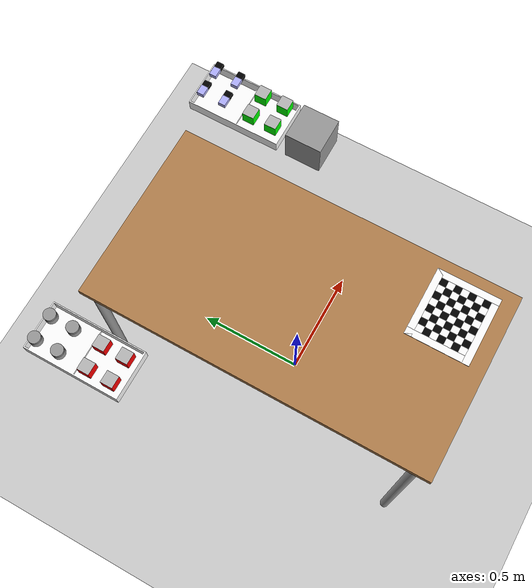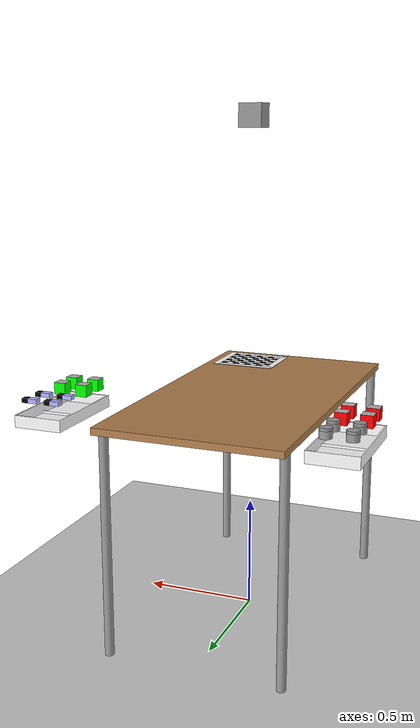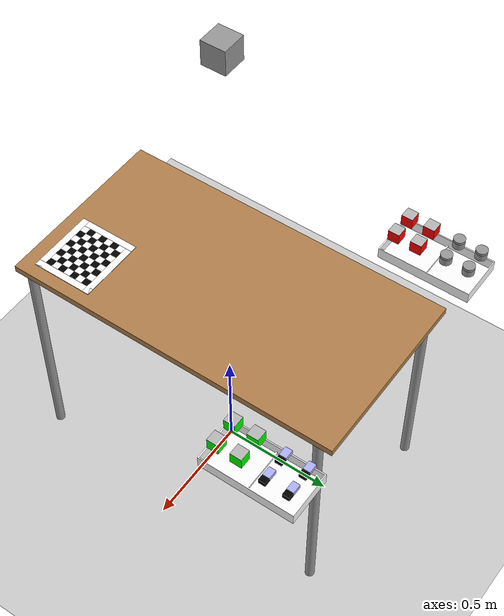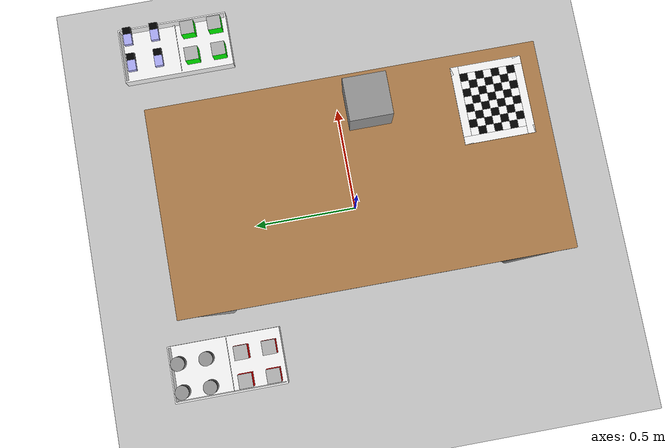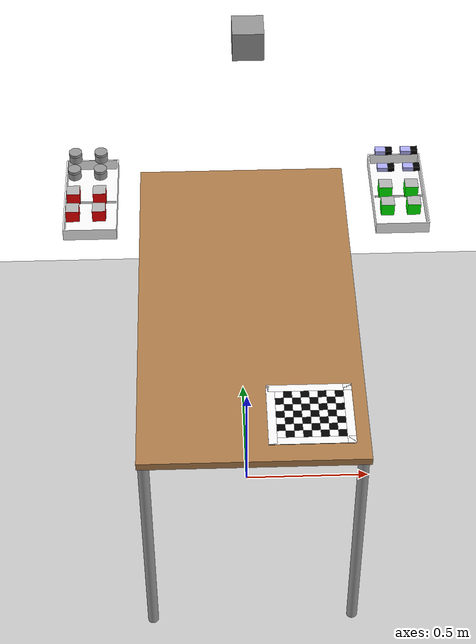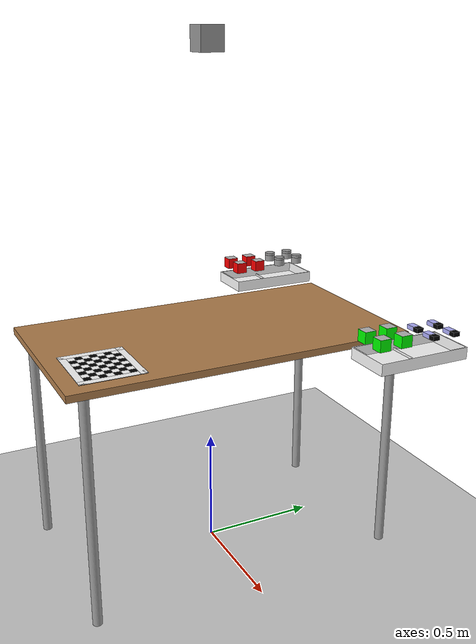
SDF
<sdf version="1.6">
 <world name="default">
  <plugin filename="gz-sim-physics-system" name="gz::sim::systems::Physics"/>
  <plugin filename="gz-sim-user-commands-system" name="gz::sim::systems::UserCommands"/>
  <plugin filename="gz-sim-scene-broadcaster-system" name="gz::sim::systems::SceneBroadcaster"/>
  <plugin filename="gz-sim-contact-system" name="gz::sim::systems::Contact"/>
  <plugin filename="gz-sim-sensors-system" name="gz::sim::systems::Sensors"/>
  <plugin filename="gz-sim-altimeter-system" name="gz::sim::systems::Altimeter"/>
  <plugin filename="gz-sim-magnetometer-system" name="gz::sim::systems::Magnetometer"/>
  <plugin filename="gz-sim-forcetorque-system" name="gz::sim::systems::ForceTorque"/>
  <plugin filename="gz-sim-logical-camera-system" name="gz::sim::systems::LogicalCamera"/>
  <plugin filename="gz-sim-robotraconteur-server-plugin" name="RobotRaconteur::GzSim::ServerPlugin">
   <server-tcp-port>11346</server-tcp-port>
   <kinematic_joint_controller model="abb">
    <joint name="joint_1"><initial_position>0</initial_position></joint>
    <joint name="joint_2"><initial_position>0.174532</initial_position></joint>
    <joint name="joint_3"><initial_position>0.523598</initial_position></joint>
    <joint name="joint_4"><initial_position>0</initial_position></joint>
    <joint name="joint_5"><initial_position>0.872664</initial_position></joint>
    <joint name="joint_6"><initial_position>0</initial_position></joint>
   </kinematic_joint_controller>
   <kinematic_joint_controller model="sawyer">
    <joint name="right_j0"><initial_position>0</initial_position></joint>
    <joint name="right_j1"><initial_position>-1.396263</initial_position></joint>
    <joint name="right_j2"><initial_position>0</initial_position></joint>
    <joint name="right_j3"><initial_position>2.094395</initial_position></joint>
    <joint name="right_j4"><initial_position>0</initial_position></joint>
    <joint name="right_j5"><initial_position>0.872664</initial_position></joint>
    <joint name="right_j6"><initial_position>0</initial_position></joint>
   </kinematic_joint_controller>
   <kinematic_joint_controller model="ur5e">
    <joint name="shoulder_pan_joint"><initial_position>-0.37542361</initial_position></joint>
    <joint name="shoulder_lift_joint"><initial_position>-1.85693303</initial_position></joint>
    <joint name="elbow_joint"><initial_position>2.49059051</initial_position></joint>
    <joint name="wrist_1_joint"><initial_position>-2.20445381</initial_position></joint>
    <joint name="wrist_2_joint"><initial_position>-1.57079633</initial_position></joint>
    <joint name="wrist_3_joint"><initial_position>1.19537272</initial_position></joint>
   </kinematic_joint_controller>
  </plugin>
  <scene><ambient>0.6 0.6 0.6 1.0</ambient><shadows>false</shadows></scene>
  <physics name="default_physics" default="true" type="dart">
   <dart><ode><solver><type>default</type></solver></ode></dart>
   <max_step_size>0.001</max_step_size>
   <real_time_factor>1.0</real_time_factor>
  </physics>
  <light type="directional" name="sun">
   <pose>0 0 10 0 0 0</pose>
   <diffuse>0.8 0.8 0.8 1</diffuse>
   <specular>0.2 0.2 0.2 1</specular>
   <attenuation>
    <range>1000</range>
    <constant>0.9</constant>
    <linear>0.01</linear>
    <quadratic>0.001</quadratic>
   </attenuation>
   <direction>-0.5 0.1 -0.9</direction>
  </light>
  <model name="ground_plane">
   <static>true</static>
   <link name="link">
    <collision name="collision">
     <geometry><plane><normal>0 0 1</normal><size>100 100</size></plane></geometry>
    </collision>
    <visual name="visual">
     <geometry><plane><normal>0 0 1</normal><size>100 100</size></plane></geometry>
     <material>
      <ambient>0.8 0.8 0.8 1</ambient>
      <diffuse>0.8 0.8 0.8 1</diffuse>
      <specular>0.8 0.8 0.8 1</specular>
     </material>
    </visual>
   </link>
  </model>
  <include><uri>model://table2</uri><pose>0 0.0 0. 0 0 1.57</pose></include>
  <include><uri>model://box2</uri><name>box2_1</name><pose>-0.6 0.6 1. 0 0 1.57</pose></include>
  <include><uri>model://box2</uri><name>box2_2</name><pose>0.6 0.6 1. 0 0 1.57</pose></include>
  <include><uri>model://camera</uri><name>camera</name><pose>0. 0. 2.2 0 0 0</pose></include>
  <include>
   <uri>model://landmark</uri>
   <name>landmark</name>
   <pose>0.2 -0.55 1.025 3.141592653589793 -0.0 0.0</pose>
  </include>
  <include><uri>model://round_bottle</uri><name>round_bottle_1</name><pose>-0.55 0.65 1.1 0 0 0</pose></include>
  <include><uri>model://round_bottle</uri><name>round_bottle_2</name><pose>-0.65 0.65 1.1 0 0 0</pose></include>
  <include><uri>model://round_bottle</uri><name>round_bottle_3</name><pose>-0.55 0.75 1.1 0 0 0</pose></include>
  <include><uri>model://round_bottle</uri><name>round_bottle_4</name><pose>-0.65 0.75 1.1 0 0 0</pose></include>
  <include><uri>model://cube200</uri><name>cube200_1</name><pose>-0.55 0.425 1.1 0 0 0</pose></include>
  <include><uri>model://cube200</uri><name>cube200_2</name><pose>-0.65 0.425 1.1 0 0 0</pose></include>
  <include><uri>model://cube200</uri><name>cube200_3</name><pose>-0.55 0.525 1.1 0 0 0</pose></include>
  <include><uri>model://cube200</uri><name>cube200_4</name><pose>-0.65 0.525 1.1 0 0 0</pose></include>
  <include><uri>model://perfume</uri><name>perfume_1</name><pose>0.55 0.65 1.1 0 0 0</pose></include>
  <include><uri>model://perfume</uri><name>perfume_2</name><pose>0.65 0.65 1.1 0 0 0</pose></include>
  <include><uri>model://perfume</uri><name>perfume_3</name><pose>0.55 0.75 1.1 0 0 0</pose></include>
  <include><uri>model://perfume</uri><name>perfume_4</name><pose>0.65 0.75 1.1 0 0 0</pose></include>
  <include><uri>model://cube201</uri><name>cube201_1</name><pose>0.55 0.425 1.1 0 0 0</pose></include>
  <include><uri>model://cube201</uri><name>cube201_2</name><pose>0.65 0.425 1.1 0 0 0</pose></include>
  <include><uri>model://cube201</uri><name>cube201_3</name><pose>0.55 0.525 1.1 0 0 0</pose></include>
  <include><uri>model://cube201</uri><name>cube201_4</name><pose>0.65 0.525 1.1 0 0 0</pose></include>
  <gravity>0.0 0.0 -9.81</gravity>
 </world>
</sdf>

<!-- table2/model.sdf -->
<sdf version='1.7'>
  <model name='table2'>
    <link name='link'>
      <self_collide>0</self_collide>
      <enable_wind>0</enable_wind>
      <kinematic>0</kinematic>
      <pose>0 0 0 0 -0 0</pose>
      <visual name='visual1'>
        <pose>0 0 1 0 -0 0</pose>
        <geometry>
          <box>
            <size>1.5 0.8 0.03</size>
          </box>
        </geometry>
        <material>
          <script>
            <uri>file://media/materials/scripts/gazebo.material</uri>
            <name>Gazebo/Wood</name>
          </script>
          <shader type='pixel'/>
        </material>
        <transparency>0</transparency>
        <cast_shadows>1</cast_shadows>
      </visual>
      <visual name='front_left_leg'>
        <pose>0.68 0.38 0.5 0 -0 0</pose>
        <geometry>
          <cylinder>
            <radius>0.02</radius>
            <length>1</length>
          </cylinder>
        </geometry>
        <material>
          <script>
            <uri>file://media/materials/scripts/gazebo.material</uri>
            <name>Gazebo/Grey</name>
          </script>
          <shader type='pixel'/>
        </material>
        <transparency>0</transparency>
        <cast_shadows>1</cast_shadows>
      </visual>
      <visual name='front_right_leg'>
        <pose>0.68 -0.38 0.5 0 -0 0</pose>
        <geometry>
          <cylinder>
            <radius>0.02</radius>
            <length>1</length>
          </cylinder>
        </geometry>
        <material>
          <script>
            <uri>file://media/materials/scripts/gazebo.material</uri>
            <name>Gazebo/Grey</name>
          </script>
          <shader type='pixel'/>
        </material>
        <transparency>0</transparency>
        <cast_shadows>1</cast_shadows>
      </visual>
      <visual name='back_right_leg'>
        <pose>-0.68 -0.38 0.5 0 -0 0</pose>
        <geometry>
          <cylinder>
            <radius>0.02</radius>
            <length>1</length>
          </cylinder>
        </geometry>
        <material>
          <script>
            <uri>file://media/materials/scripts/gazebo.material</uri>
            <name>Gazebo/Grey</name>
          </script>
          <shader type='pixel'/>
        </material>
        <transparency>0</transparency>
        <cast_shadows>1</cast_shadows>
      </visual>
      <visual name='back_left_leg'>
        <pose>-0.68 0.38 0.5 0 -0 0</pose>
        <geometry>
          <cylinder>
            <radius>0.02</radius>
            <length>1</length>
          </cylinder>
        </geometry>
        <material>
          <script>
            <uri>file://media/materials/scripts/gazebo.material</uri>
            <name>Gazebo/Grey</name>
          </script>
          <shader type='pixel'/>
        </material>
        <transparency>0</transparency>
        <cast_shadows>1</cast_shadows>
      </visual>
      <collision name='front_right_leg'>
        <laser_retro>0</laser_retro>
        <max_contacts>10</max_contacts>
        <pose>0.68 -0.38 0.5 0 -0 0</pose>
        <geometry>
          <cylinder>
            <radius>0.02</radius>
            <length>1</length>
          </cylinder>
        </geometry>
        <surface>
          <friction>
            <ode>
              <mu>1</mu>
              <mu2>1</mu2>
              <fdir1>0 0 0</fdir1>
              <slip1>0</slip1>
              <slip2>0</slip2>
            </ode>
            <torsional>
              <coefficient>1</coefficient>
              <patch_radius>0</patch_radius>
              <surface_radius>0</surface_radius>
              <use_patch_radius>1</use_patch_radius>
              <ode>
                <slip>0</slip>
              </ode>
            </torsional>
          </friction>
          <bounce>
            <restitution_coefficient>0</restitution_coefficient>
            <threshold>1e+06</threshold>
          </bounce>
          <contact>
            <collide_without_contact>0</collide_without_contact>
            <collide_without_contact_bitmask>1</collide_without_contact_bitmask>
            <collide_bitmask>1</collide_bitmask>
            <ode>
              <soft_cfm>0</soft_cfm>
              <soft_erp>0.2</soft_erp>
              <kp>1e+13</kp>
              <kd>1</kd>
              <max_vel>0.01</max_vel>
              <min_depth>0</min_depth>
            </ode>
            <bullet>
              <split_impulse>1</split_impulse>
              <split_impulse_penetration_threshold>-0.01</split_impulse_penetration_threshold>
              <soft_cfm>0</soft_cfm>
              <soft_erp>0.2</soft_erp>
              <kp>1e+13</kp>
              <kd>1</kd>
            </bullet>
          </contact>
        </surface>
      </collision>
      <collision name='surface'>
        <laser_retro>0</laser_retro>
        <max_contacts>10</max_contacts>
        <pose>0 0 1 0 -0 0</pose>
        <geometry>
          <box>
            <size>1.5 0.8 0.03</size>
          </box>
        </geometry>
        <surface>
          <friction>
            <ode>
              <mu>0.6</mu>
              <mu2>0.6</mu2>
              <fdir1>0 0 0</fdir1>
              <slip1>0</slip1>
              <slip2>0</slip2>
            </ode>
            <torsional>
              <coefficient>1</coefficient>
              <patch_radius>0</patch_radius>
              <surface_radius>0</surface_radius>
              <use_patch_radius>1</use_patch_radius>
              <ode>
                <slip>0</slip>
              </ode>
            </torsional>
          </friction>
          <bounce>
            <restitution_coefficient>0</restitution_coefficient>
            <threshold>1e+06</threshold>
          </bounce>
          <contact>
            <collide_without_contact>0</collide_without_contact>
            <collide_without_contact_bitmask>1</collide_without_contact_bitmask>
            <collide_bitmask>1</collide_bitmask>
            <ode>
              <soft_cfm>0</soft_cfm>
              <soft_erp>0.2</soft_erp>
              <kp>1e+13</kp>
              <kd>1</kd>
              <max_vel>0.01</max_vel>
              <min_depth>0</min_depth>
            </ode>
            <bullet>
              <split_impulse>1</split_impulse>
              <split_impulse_penetration_threshold>-0.01</split_impulse_penetration_threshold>
              <soft_cfm>0</soft_cfm>
              <soft_erp>0.2</soft_erp>
              <kp>1e+13</kp>
              <kd>1</kd>
            </bullet>
          </contact>
        </surface>
      </collision>
      <collision name='front_left_leg'>
        <laser_retro>0</laser_retro>
        <max_contacts>10</max_contacts>
        <pose>0.68 0.38 0.5 0 -0 0</pose>
        <geometry>
          <cylinder>
            <radius>0.02</radius>
            <length>1</length>
          </cylinder>
        </geometry>
        <surface>
          <friction>
            <ode>
              <mu>1</mu>
              <mu2>1</mu2>
              <fdir1>0 0 0</fdir1>
              <slip1>0</slip1>
              <slip2>0</slip2>
            </ode>
            <torsional>
              <coefficient>1</coefficient>
              <patch_radius>0</patch_radius>
              <surface_radius>0</surface_radius>
              <use_patch_radius>1</use_patch_radius>
              <ode>
                <slip>0</slip>
              </ode>
            </torsional>
          </friction>
          <bounce>
            <restitution_coefficient>0</restitution_coefficient>
            <threshold>1e+06</threshold>
          </bounce>
          <contact>
            <collide_without_contact>0</collide_without_contact>
            <collide_without_contact_bitmask>1</collide_without_contact_bitmask>
            <collide_bitmask>1</collide_bitmask>
            <ode>
              <soft_cfm>0</soft_cfm>
              <soft_erp>0.2</soft_erp>
              <kp>1e+13</kp>
              <kd>1</kd>
              <max_vel>0.01</max_vel>
              <min_depth>0</min_depth>
            </ode>
            <bullet>
              <split_impulse>1</split_impulse>
              <split_impulse_penetration_threshold>-0.01</split_impulse_penetration_threshold>
              <soft_cfm>0</soft_cfm>
              <soft_erp>0.2</soft_erp>
              <kp>1e+13</kp>
              <kd>1</kd>
            </bullet>
          </contact>
        </surface>
      </collision>
      <collision name='back_right_leg'>
        <laser_retro>0</laser_retro>
        <max_contacts>10</max_contacts>
        <pose>-0.68 -0.38 0.5 0 -0 0</pose>
        <geometry>
          <cylinder>
            <radius>0.02</radius>
            <length>1</length>
          </cylinder>
        </geometry>
        <surface>
          <friction>
            <ode>
              <mu>1</mu>
              <mu2>1</mu2>
              <fdir1>0 0 0</fdir1>
              <slip1>0</slip1>
              <slip2>0</slip2>
            </ode>
            <torsional>
              <coefficient>1</coefficient>
              <patch_radius>0</patch_radius>
              <surface_radius>0</surface_radius>
              <use_patch_radius>1</use_patch_radius>
              <ode>
                <slip>0</slip>
              </ode>
            </torsional>
          </friction>
          <bounce>
            <restitution_coefficient>0</restitution_coefficient>
            <threshold>1e+06</threshold>
          </bounce>
          <contact>
            <collide_without_contact>0</collide_without_contact>
            <collide_without_contact_bitmask>1</collide_without_contact_bitmask>
            <collide_bitmask>1</collide_bitmask>
            <ode>
              <soft_cfm>0</soft_cfm>
              <soft_erp>0.2</soft_erp>
              <kp>1e+13</kp>
              <kd>1</kd>
              <max_vel>0.01</max_vel>
              <min_depth>0</min_depth>
            </ode>
            <bullet>
              <split_impulse>1</split_impulse>
              <split_impulse_penetration_threshold>-0.01</split_impulse_penetration_threshold>
              <soft_cfm>0</soft_cfm>
              <soft_erp>0.2</soft_erp>
              <kp>1e+13</kp>
              <kd>1</kd>
            </bullet>
          </contact>
        </surface>
      </collision>
      <collision name='back_left_leg'>
        <laser_retro>0</laser_retro>
        <max_contacts>10</max_contacts>
        <pose>-0.68 0.38 0.5 0 -0 0</pose>
        <geometry>
          <cylinder>
            <radius>0.02</radius>
            <length>1</length>
          </cylinder>
        </geometry>
        <surface>
          <friction>
            <ode>
              <mu>1</mu>
              <mu2>1</mu2>
              <fdir1>0 0 0</fdir1>
              <slip1>0</slip1>
              <slip2>0</slip2>
            </ode>
            <torsional>
              <coefficient>1</coefficient>
              <patch_radius>0</patch_radius>
              <surface_radius>0</surface_radius>
              <use_patch_radius>1</use_patch_radius>
              <ode>
                <slip>0</slip>
              </ode>
            </torsional>
          </friction>
          <bounce>
            <restitution_coefficient>0</restitution_coefficient>
            <threshold>1e+06</threshold>
          </bounce>
          <contact>
            <collide_without_contact>0</collide_without_contact>
            <collide_without_contact_bitmask>1</collide_without_contact_bitmask>
            <collide_bitmask>1</collide_bitmask>
            <ode>
              <soft_cfm>0</soft_cfm>
              <soft_erp>0.2</soft_erp>
              <kp>1e+13</kp>
              <kd>1</kd>
              <max_vel>0.01</max_vel>
              <min_depth>0</min_depth>
            </ode>
            <bullet>
              <split_impulse>1</split_impulse>
              <split_impulse_penetration_threshold>-0.01</split_impulse_penetration_threshold>
              <soft_cfm>0</soft_cfm>
              <soft_erp>0.2</soft_erp>
              <kp>1e+13</kp>
              <kd>1</kd>
            </bullet>
          </contact>
        </surface>
      </collision>
    </link>
    <static>1</static>
    <allow_auto_disable>1</allow_auto_disable>
  </model>
</sdf>

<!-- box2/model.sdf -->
<sdf version='1.6'>
  <model name='box2'>
    <link name="body">
      <visual name="visual">
        <pose frame=''>0 0 0.015 0 -0 0</pose>
        <geometry>
          <mesh><uri>model://box2/box2.stl</uri>
            <scale>1 1 1</scale>

          </mesh>
        </geometry>
        <material>
          <script>
            <uri>model://box2/materials/scripts</uri>
            <uri>model://box2/materials/textures</uri>
            <name>box2color</name>
          </script>
          <shader type='vertex'>
            <normal_map>__default__</normal_map>
          </shader>
          <ambient>1 1 1 1</ambient>
          <diffuse>1 1 1 1</diffuse>
          <specular>0 0 0 1</specular>
          <emissive>0 0 0 1</emissive>
        </material>
      </visual>

      <collision name='collision_0'>
        <laser_retro>0</laser_retro>
        <max_contacts>10</max_contacts>
        <pose frame=''>-0.005 0 0.0 0 -0 0</pose>
        <geometry>
          <box>
            <size>0.42 0.21 0.005</size>
          </box>
        </geometry>
        <surface>
          <friction>
            <ode>
              <mu>1</mu>
              <mu2>1</mu2>
              <fdir1>0 0 0</fdir1>
              <slip1>0</slip1>
              <slip2>0</slip2>
            </ode>
            <torsional>
              <coefficient>1</coefficient>
              <patch_radius>0</patch_radius>
              <surface_radius>0</surface_radius>
              <use_patch_radius>1</use_patch_radius>
              <ode>
                <slip>0</slip>
              </ode>
            </torsional>
          </friction>
          <bounce>
            <restitution_coefficient>0</restitution_coefficient>
            <threshold>1e+06</threshold>
          </bounce>
          <contact>
            <collide_without_contact>0</collide_without_contact>
            <collide_without_contact_bitmask>1</collide_without_contact_bitmask>
            <collide_bitmask>1</collide_bitmask>
            <ode>
              <soft_cfm>0</soft_cfm>
              <soft_erp>0.2</soft_erp>
              <kp>1e+13</kp>
              <kd>1</kd>
              <max_vel>0.01</max_vel>
              <min_depth>0</min_depth>
            </ode>
            <bullet>
              <split_impulse>1</split_impulse>
              <split_impulse_penetration_threshold>-0.01</split_impulse_penetration_threshold>
              <soft_cfm>0</soft_cfm>
              <soft_erp>0.2</soft_erp>
              <kp>1e+13</kp>
              <kd>1</kd>
            </bullet>
          </contact>
        </surface>
      </collision>
    </link>
    <static>1</static>
  </model>
</sdf>

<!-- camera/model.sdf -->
<sdf version='1.7'>
  <model name='camera'>
    <link name='link'>
      <inertial>
        <mass>1</mass>
        <inertia>
          <ixx>0.166667</ixx>
          <ixy>0</ixy>
          <ixz>0</ixz>
          <iyy>0.166667</iyy>
          <iyz>0</iyz>
          <izz>0.166667</izz>
        </inertia>
        <pose>0 0 0 0 -0 0</pose>
      </inertial>
      <self_collide>0</self_collide>
      <enable_wind>0</enable_wind>
      <kinematic>0</kinematic>
      <pose>0 0 0 0 -0 0</pose>
      <gravity>1</gravity>
      <visual name='visual'>
        <geometry>
          <box>
            <size>0.1 0.1 0.1</size>
          </box>
        </geometry>
        <material>
          <script>
            <name>Gazebo/Grey</name>
            <uri>file://media/materials/scripts/gazebo.material</uri>
          </script>
          <shader type='pixel'>
            <normal_map>__default__</normal_map>
          </shader>
          <ambient>0.3 0.3 0.3 1</ambient>
          <diffuse>0.7 0.7 0.7 1</diffuse>
          <specular>0.01 0.01 0.01 1</specular>
          <emissive>0 0 0 1</emissive>
        </material>
        <pose>0 0 0 0 -0 0</pose>
        <transparency>0</transparency>
        <cast_shadows>1</cast_shadows>
      </visual>
      <sensor name="camera" type="camera">

        <pose>0. 0 0 0 1.570796326 3.141592653</pose>
        <camera>

          <image>
            <width>1280</width>
            <height>720</height>
            <format>B8G8R8</format>
          </image>
          <lens>
            <intrinsics>
              <fx>616.23</fx>
              <fy>617.23</fy>
              <cx>641.29</cx>
              <cy>359.53</cy>
            </intrinsics>
          </lens>
          <clip>
            <near>0.1</near>
            <far>100</far>
          </clip>
        </camera>
        <always_on>1</always_on>
        <update_rate>30</update_rate>
        <visualize>false</visualize>
      </sensor>
    </link>
    <static>1</static>
    <allow_auto_disable>1</allow_auto_disable>
  </model>
</sdf>

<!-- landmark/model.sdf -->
<!-- |    This document was autogenerated by xacro from model.sdx.xacro                | -->
<!-- |    EDITING THIS FILE BY HAND IS NOT RECOMMENDED                                 | -->
<sdf version="1.5">
  <model name="landmark">
    <static>true</static>
    <link name="base_link">
      <!-- Back of the landmark not to mess with small Z offset -->
      <visual name="back">
        <pose>0 0 0.0015 0 0 0</pose>
        <geometry>
          <box>
            <size>0.3 0.27 0.001</size>
          </box>
        </geometry>
        <material>
          <ambient>0.5 0.5 0.5 1</ambient>
          <specular>0.5 0.5 0.5 1</specular>
          <diffuse>0.5 0.5 0.5 1</diffuse>
        </material>
      </visual>
      <inertial>
        <mass>0.1</mass>
      </inertial>
      <!-- Borders -->
      <visual name="border0">
        <pose>0.135 0 0.0005 0 0 0</pose>
        <geometry>
          <box>
            <size>0.03 0.27 0.001</size>
          </box>
        </geometry>
        <material>
          <ambient>1 1 1 1</ambient>
          <specular>1 1 1 1</specular>
          <diffuse>1 1 1 1</diffuse>
        </material>
      </visual>
      <visual name="border1">
        <pose>-0.135 0 0.0005 0 0 0</pose>
        <geometry>
          <box>
            <size>0.03 0.27 0.001</size>
          </box>
        </geometry>
        <material>
          <ambient>1 1 1 1</ambient>
          <specular>1 1 1 1</specular>
          <diffuse>1 1 1 1</diffuse>
        </material>
      </visual>
      <visual name="border2">
        <pose>0 0.12 0.0005 0 0 0</pose>
        <geometry>
          <box>
            <size>0.3 0.03 0.001</size>
          </box>
        </geometry>
        <material>
          <ambient>1 1 1 1</ambient>
          <specular>1 1 1 1</specular>
          <diffuse>1 1 1 1</diffuse>
        </material>
      </visual>
      <visual name="border3">
        <pose>0 -0.12 0.0005 0 0 0</pose>
        <geometry>
          <box>
            <size>0.3 0.03 0.001</size>
          </box>
        </geometry>
        <material>
          <ambient>1 1 1 1</ambient>
          <specular>1 1 1 1</specular>
          <diffuse>1 1 1 1</diffuse>
        </material>
      </visual>
      <visual name="76">
        <pose>0.105 0.09 0.0005 0 0 0</pose>
        <geometry>
          <box>
            <size>0.03 0.03 0.001</size>
          </box>
        </geometry>
        <material>
          <ambient>0 0 0 1</ambient>
          <specular>0 0 0 1</specular>
          <diffuse>0 0 0 1</diffuse>
        </material>
      </visual>
      <visual name="75">
        <pose>0.105 0.06 0.0005 0 0 0</pose>
        <geometry>
          <box>
            <size>0.03 0.03 0.001</size>
          </box>
        </geometry>
        <material>
          <ambient>1 1 1 1</ambient>
          <specular>1 1 1 1</specular>
          <diffuse>1 1 1 1</diffuse>
        </material>
      </visual>
      <visual name="74">
        <pose>0.105 0.03 0.0005 0 0 0</pose>
        <geometry>
          <box>
            <size>0.03 0.03 0.001</size>
          </box>
        </geometry>
        <material>
          <ambient>0 0 0 1</ambient>
          <specular>0 0 0 1</specular>
          <diffuse>0 0 0 1</diffuse>
        </material>
      </visual>
      <visual name="73">
        <pose>0.105 0.0 0.0005 0 0 0</pose>
        <geometry>
          <box>
            <size>0.03 0.03 0.001</size>
          </box>
        </geometry>
        <material>
          <ambient>1 1 1 1</ambient>
          <specular>1 1 1 1</specular>
          <diffuse>1 1 1 1</diffuse>
        </material>
      </visual>
      <visual name="72">
        <pose>0.105 -0.03 0.0005 0 0 0</pose>
        <geometry>
          <box>
            <size>0.03 0.03 0.001</size>
          </box>
        </geometry>
        <material>
          <ambient>0 0 0 1</ambient>
          <specular>0 0 0 1</specular>
          <diffuse>0 0 0 1</diffuse>
        </material>
      </visual>
      <visual name="71">
        <pose>0.105 -0.06 0.0005 0 0 0</pose>
        <geometry>
          <box>
            <size>0.03 0.03 0.001</size>
          </box>
        </geometry>
        <material>
          <ambient>1 1 1 1</ambient>
          <specular>1 1 1 1</specular>
          <diffuse>1 1 1 1</diffuse>
        </material>
      </visual>
      <visual name="70">
        <pose>0.105 -0.09 0.0005 0 0 0</pose>
        <geometry>
          <box>
            <size>0.03 0.03 0.001</size>
          </box>
        </geometry>
        <material>
          <ambient>0 0 0 1</ambient>
          <specular>0 0 0 1</specular>
          <diffuse>0 0 0 1</diffuse>
        </material>
      </visual>
      <visual name="66">
        <pose>0.075 0.09 0.0005 0 0 0</pose>
        <geometry>
          <box>
            <size>0.03 0.03 0.001</size>
          </box>
        </geometry>
        <material>
          <ambient>1 1 1 1</ambient>
          <specular>1 1 1 1</specular>
          <diffuse>1 1 1 1</diffuse>
        </material>
      </visual>
      <visual name="65">
        <pose>0.075 0.06 0.0005 0 0 0</pose>
        <geometry>
          <box>
            <size>0.03 0.03 0.001</size>
          </box>
        </geometry>
        <material>
          <ambient>0 0 0 1</ambient>
          <specular>0 0 0 1</specular>
          <diffuse>0 0 0 1</diffuse>
        </material>
      </visual>
      <visual name="64">
        <pose>0.075 0.03 0.0005 0 0 0</pose>
        <geometry>
          <box>
            <size>0.03 0.03 0.001</size>
          </box>
        </geometry>
        <material>
          <ambient>1 1 1 1</ambient>
          <specular>1 1 1 1</specular>
          <diffuse>1 1 1 1</diffuse>
        </material>
      </visual>
      <visual name="63">
        <pose>0.075 0.0 0.0005 0 0 0</pose>
        <geometry>
          <box>
            <size>0.03 0.03 0.001</size>
          </box>
        </geometry>
        <material>
          <ambient>0 0 0 1</ambient>
          <specular>0 0 0 1</specular>
          <diffuse>0 0 0 1</diffuse>
        </material>
      </visual>
      <visual name="62">
        <pose>0.075 -0.03 0.0005 0 0 0</pose>
        <geometry>
          <box>
            <size>0.03 0.03 0.001</size>
          </box>
        </geometry>
        <material>
          <ambient>1 1 1 1</ambient>
          <specular>1 1 1 1</specular>
          <diffuse>1 1 1 1</diffuse>
        </material>
      </visual>
      <visual name="61">
        <pose>0.075 -0.06 0.0005 0 0 0</pose>
        <geometry>
          <box>
            <size>0.03 0.03 0.001</size>
          </box>
        </geometry>
        <material>
          <ambient>0 0 0 1</ambient>
          <specular>0 0 0 1</specular>
          <diffuse>0 0 0 1</diffuse>
        </material>
      </visual>
      <visual name="60">
        <pose>0.075 -0.09 0.0005 0 0 0</pose>
        <geometry>
          <box>
            <size>0.03 0.03 0.001</size>
          </box>
        </geometry>
        <material>
          <ambient>1 1 1 1</ambient>
          <specular>1 1 1 1</specular>
          <diffuse>1 1 1 1</diffuse>
        </material>
      </visual>
      <visual name="56">
        <pose>0.045 0.09 0.0005 0 0 0</pose>
        <geometry>
          <box>
            <size>0.03 0.03 0.001</size>
          </box>
        </geometry>
        <material>
          <ambient>0 0 0 1</ambient>
          <specular>0 0 0 1</specular>
          <diffuse>0 0 0 1</diffuse>
        </material>
      </visual>
      <visual name="55">
        <pose>0.045 0.06 0.0005 0 0 0</pose>
        <geometry>
          <box>
            <size>0.03 0.03 0.001</size>
          </box>
        </geometry>
        <material>
          <ambient>1 1 1 1</ambient>
          <specular>1 1 1 1</specular>
          <diffuse>1 1 1 1</diffuse>
        </material>
      </visual>
      <visual name="54">
        <pose>0.045 0.03 0.0005 0 0 0</pose>
        <geometry>
          <box>
            <size>0.03 0.03 0.001</size>
          </box>
        </geometry>
        <material>
          <ambient>0 0 0 1</ambient>
          <specular>0 0 0 1</specular>
          <diffuse>0 0 0 1</diffuse>
        </material>
      </visual>
      <visual name="53">
        <pose>0.045 0.0 0.0005 0 0 0</pose>
        <geometry>
          <box>
            <size>0.03 0.03 0.001</size>
          </box>
        </geometry>
        <material>
          <ambient>1 1 1 1</ambient>
          <specular>1 1 1 1</specular>
          <diffuse>1 1 1 1</diffuse>
        </material>
      </visual>
      <visual name="52">
        <pose>0.045 -0.03 0.0005 0 0 0</pose>
        <geometry>
          <box>
            <size>0.03 0.03 0.001</size>
          </box>
        </geometry>
        <material>
          <ambient>0 0 0 1</ambient>
          <specular>0 0 0 1</specular>
          <diffuse>0 0 0 1</diffuse>
        </material>
      </visual>
      <visual name="51">
        <pose>0.045 -0.06 0.0005 0 0 0</pose>
        <geometry>
          <box>
            <size>0.03 0.03 0.001</size>
          </box>
        </geometry>
        <material>
          <ambient>1 1 1 1</ambient>
          <specular>1 1 1 1</specular>
          <diffuse>1 1 1 1</diffuse>
        </material>
      </visual>
      <visual name="50">
        <pose>0.045 -0.09 0.0005 0 0 0</pose>
        <geometry>
          <box>
            <size>0.03 0.03 0.001</size>
          </box>
        </geometry>
        <material>
          <ambient>0 0 0 1</ambient>
          <specular>0 0 0 1</specular>
          <diffuse>0 0 0 1</diffuse>
        </material>
      </visual>
      <visual name="46">
        <pose>0.015 0.09 0.0005 0 0 0</pose>
        <geometry>
          <box>
            <size>0.03 0.03 0.001</size>
          </box>
        </geometry>
        <material>
          <ambient>1 1 1 1</ambient>
          <specular>1 1 1 1</specular>
          <diffuse>1 1 1 1</diffuse>
        </material>
      </visual>
      <visual name="45">
        <pose>0.015 0.06 0.0005 0 0 0</pose>
        <geometry>
          <box>
            <size>0.03 0.03 0.001</size>
          </box>
        </geometry>
        <material>
          <ambient>0 0 0 1</ambient>
          <specular>0 0 0 1</specular>
          <diffuse>0 0 0 1</diffuse>
        </material>
      </visual>
      <visual name="44">
        <pose>0.015 0.03 0.0005 0 0 0</pose>
        <geometry>
          <box>
            <size>0.03 0.03 0.001</size>
          </box>
        </geometry>
        <material>
          <ambient>1 1 1 1</ambient>
          <specular>1 1 1 1</specular>
          <diffuse>1 1 1 1</diffuse>
        </material>
      </visual>
      <visual name="43">
        <pose>0.015 0.0 0.0005 0 0 0</pose>
        <geometry>
          <box>
            <size>0.03 0.03 0.001</size>
          </box>
        </geometry>
        <material>
          <ambient>0 0 0 1</ambient>
          <specular>0 0 0 1</specular>
          <diffuse>0 0 0 1</diffuse>
        </material>
      </visual>
      <visual name="42">
        <pose>0.015 -0.03 0.0005 0 0 0</pose>
        <geometry>
          <box>
            <size>0.03 0.03 0.001</size>
          </box>
        </geometry>
        <material>
          <ambient>1 1 1 1</ambient>
          <specular>1 1 1 1</specular>
          <diffuse>1 1 1 1</diffuse>
        </material>
      </visual>
      <visual name="41">
        <pose>0.015 -0.06 0.0005 0 0 0</pose>
        <geometry>
          <box>
            <size>0.03 0.03 0.001</size>
          </box>
        </geometry>
        <material>
          <ambient>0 0 0 1</ambient>
          <specular>0 0 0 1</specular>
          <diffuse>0 0 0 1</diffuse>
        </material>
      </visual>
      <visual name="40">
        <pose>0.015 -0.09 0.0005 0 0 0</pose>
        <geometry>
          <box>
            <size>0.03 0.03 0.001</size>
          </box>
        </geometry>
        <material>
          <ambient>1 1 1 1</ambient>
          <specular>1 1 1 1</specular>
          <diffuse>1 1 1 1</diffuse>
        </material>
      </visual>
      <visual name="36">
        <pose>-0.015 0.09 0.0005 0 0 0</pose>
        <geometry>
          <box>
            <size>0.03 0.03 0.001</size>
          </box>
        </geometry>
        <material>
          <ambient>0 0 0 1</ambient>
          <specular>0 0 0 1</specular>
          <diffuse>0 0 0 1</diffuse>
        </material>
      </visual>
      <visual name="35">
        <pose>-0.015 0.06 0.0005 0 0 0</pose>
        <geometry>
          <box>
            <size>0.03 0.03 0.001</size>
          </box>
        </geometry>
        <material>
          <ambient>1 1 1 1</ambient>
          <specular>1 1 1 1</specular>
          <diffuse>1 1 1 1</diffuse>
        </material>
      </visual>
      <visual name="34">
        <pose>-0.015 0.03 0.0005 0 0 0</pose>
        <geometry>
          <box>
            <size>0.03 0.03 0.001</size>
          </box>
        </geometry>
        <material>
          <ambient>0 0 0 1</ambient>
          <specular>0 0 0 1</specular>
          <diffuse>0 0 0 1</diffuse>
        </material>
      </visual>
      <visual name="33">
        <pose>-0.015 0.0 0.0005 0 0 0</pose>
        <geometry>
          <box>
            <size>0.03 0.03 0.001</size>
          </box>
        </geometry>
        <material>
          <ambient>1 1 1 1</ambient>
          <specular>1 1 1 1</specular>
          <diffuse>1 1 1 1</diffuse>
        </material>
      </visual>
      <visual name="32">
        <pose>-0.015 -0.03 0.0005 0 0 0</pose>
        <geometry>
          <box>
            <size>0.03 0.03 0.001</size>
          </box>
        </geometry>
        <material>
          <ambient>0 0 0 1</ambient>
          <specular>0 0 0 1</specular>
          <diffuse>0 0 0 1</diffuse>
        </material>
      </visual>
      <visual name="31">
        <pose>-0.015 -0.06 0.0005 0 0 0</pose>
        <geometry>
          <box>
            <size>0.03 0.03 0.001</size>
          </box>
        </geometry>
        <material>
          <ambient>1 1 1 1</ambient>
          <specular>1 1 1 1</specular>
          <diffuse>1 1 1 1</diffuse>
        </material>
      </visual>
      <visual name="30">
        <pose>-0.015 -0.09 0.0005 0 0 0</pose>
        <geometry>
          <box>
            <size>0.03 0.03 0.001</size>
          </box>
        </geometry>
        <material>
          <ambient>0 0 0 1</ambient>
          <specular>0 0 0 1</specular>
          <diffuse>0 0 0 1</diffuse>
        </material>
      </visual>
      <visual name="26">
        <pose>-0.045 0.09 0.0005 0 0 0</pose>
        <geometry>
          <box>
            <size>0.03 0.03 0.001</size>
          </box>
        </geometry>
        <material>
          <ambient>1 1 1 1</ambient>
          <specular>1 1 1 1</specular>
          <diffuse>1 1 1 1</diffuse>
        </material>
      </visual>
      <visual name="25">
        <pose>-0.045 0.06 0.0005 0 0 0</pose>
        <geometry>
          <box>
            <size>0.03 0.03 0.001</size>
          </box>
        </geometry>
        <material>
          <ambient>0 0 0 1</ambient>
          <specular>0 0 0 1</specular>
          <diffuse>0 0 0 1</diffuse>
        </material>
      </visual>
      <visual name="24">
        <pose>-0.045 0.03 0.0005 0 0 0</pose>
        <geometry>
          <box>
            <size>0.03 0.03 0.001</size>
          </box>
        </geometry>
        <material>
          <ambient>1 1 1 1</ambient>
          <specular>1 1 1 1</specular>
          <diffuse>1 1 1 1</diffuse>
        </material>
      </visual>
      <visual name="23">
        <pose>-0.045 0.0 0.0005 0 0 0</pose>
        <geometry>
          <box>
            <size>0.03 0.03 0.001</size>
          </box>
        </geometry>
        <material>
          <ambient>0 0 0 1</ambient>
          <specular>0 0 0 1</specular>
          <diffuse>0 0 0 1</diffuse>
        </material>
      </visual>
      <visual name="22">
        <pose>-0.045 -0.03 0.0005 0 0 0</pose>
        <geometry>
          <box>
            <size>0.03 0.03 0.001</size>
          </box>
        </geometry>
        <material>
          <ambient>1 1 1 1</ambient>
          <specular>1 1 1 1</specular>
          <diffuse>1 1 1 1</diffuse>
        </material>
      </visual>
      <visual name="21">
        <pose>-0.045 -0.06 0.0005 0 0 0</pose>
        <geometry>
          <box>
            <size>0.03 0.03 0.001</size>
          </box>
        </geometry>
        <material>
          <ambient>0 0 0 1</ambient>
          <specular>0 0 0 1</specular>
          <diffuse>0 0 0 1</diffuse>
        </material>
      </visual>
      <visual name="20">
        <pose>-0.045 -0.09 0.0005 0 0 0</pose>
        <geometry>
          <box>
            <size>0.03 0.03 0.001</size>
          </box>
        </geometry>
        <material>
          <ambient>1 1 1 1</ambient>
          <specular>1 1 1 1</specular>
          <diffuse>1 1 1 1</diffuse>
        </material>
      </visual>
      <visual name="16">
        <pose>-0.075 0.09 0.0005 0 0 0</pose>
        <geometry>
          <box>
            <size>0.03 0.03 0.001</size>
          </box>
        </geometry>
        <material>
          <ambient>0 0 0 1</ambient>
          <specular>0 0 0 1</specular>
          <diffuse>0 0 0 1</diffuse>
        </material>
      </visual>
      <visual name="15">
        <pose>-0.075 0.06 0.0005 0 0 0</pose>
        <geometry>
          <box>
            <size>0.03 0.03 0.001</size>
          </box>
        </geometry>
        <material>
          <ambient>1 1 1 1</ambient>
          <specular>1 1 1 1</specular>
          <diffuse>1 1 1 1</diffuse>
        </material>
      </visual>
      <visual name="14">
        <pose>-0.075 0.03 0.0005 0 0 0</pose>
        <geometry>
          <box>
            <size>0.03 0.03 0.001</size>
          </box>
        </geometry>
        <material>
          <ambient>0 0 0 1</ambient>
          <specular>0 0 0 1</specular>
          <diffuse>0 0 0 1</diffuse>
        </material>
      </visual>
      <visual name="13">
        <pose>-0.075 0.0 0.0005 0 0 0</pose>
        <geometry>
          <box>
            <size>0.03 0.03 0.001</size>
          </box>
        </geometry>
        <material>
          <ambient>1 1 1 1</ambient>
          <specular>1 1 1 1</specular>
          <diffuse>1 1 1 1</diffuse>
        </material>
      </visual>
      <visual name="12">
        <pose>-0.075 -0.03 0.0005 0 0 0</pose>
        <geometry>
          <box>
            <size>0.03 0.03 0.001</size>
          </box>
        </geometry>
        <material>
          <ambient>0 0 0 1</ambient>
          <specular>0 0 0 1</specular>
          <diffuse>0 0 0 1</diffuse>
        </material>
      </visual>
      <visual name="11">
        <pose>-0.075 -0.06 0.0005 0 0 0</pose>
        <geometry>
          <box>
            <size>0.03 0.03 0.001</size>
          </box>
        </geometry>
        <material>
          <ambient>1 1 1 1</ambient>
          <specular>1 1 1 1</specular>
          <diffuse>1 1 1 1</diffuse>
        </material>
      </visual>
      <visual name="10">
        <pose>-0.075 -0.09 0.0005 0 0 0</pose>
        <geometry>
          <box>
            <size>0.03 0.03 0.001</size>
          </box>
        </geometry>
        <material>
          <ambient>0 0 0 1</ambient>
          <specular>0 0 0 1</specular>
          <diffuse>0 0 0 1</diffuse>
        </material>
      </visual>
      <visual name="06">
        <pose>-0.105 0.09 0.0005 0 0 0</pose>
        <geometry>
          <box>
            <size>0.03 0.03 0.001</size>
          </box>
        </geometry>
        <material>
          <ambient>1 1 1 1</ambient>
          <specular>1 1 1 1</specular>
          <diffuse>1 1 1 1</diffuse>
        </material>
      </visual>
      <visual name="05">
        <pose>-0.105 0.06 0.0005 0 0 0</pose>
        <geometry>
          <box>
            <size>0.03 0.03 0.001</size>
          </box>
        </geometry>
        <material>
          <ambient>0 0 0 1</ambient>
          <specular>0 0 0 1</specular>
          <diffuse>0 0 0 1</diffuse>
        </material>
      </visual>
      <visual name="04">
        <pose>-0.105 0.03 0.0005 0 0 0</pose>
        <geometry>
          <box>
            <size>0.03 0.03 0.001</size>
          </box>
        </geometry>
        <material>
          <ambient>1 1 1 1</ambient>
          <specular>1 1 1 1</specular>
          <diffuse>1 1 1 1</diffuse>
        </material>
      </visual>
      <visual name="03">
        <pose>-0.105 0.0 0.0005 0 0 0</pose>
        <geometry>
          <box>
            <size>0.03 0.03 0.001</size>
          </box>
        </geometry>
        <material>
          <ambient>0 0 0 1</ambient>
          <specular>0 0 0 1</specular>
          <diffuse>0 0 0 1</diffuse>
        </material>
      </visual>
      <visual name="02">
        <pose>-0.105 -0.03 0.0005 0 0 0</pose>
        <geometry>
          <box>
            <size>0.03 0.03 0.001</size>
          </box>
        </geometry>
        <material>
          <ambient>1 1 1 1</ambient>
          <specular>1 1 1 1</specular>
          <diffuse>1 1 1 1</diffuse>
        </material>
      </visual>
      <visual name="01">
        <pose>-0.105 -0.06 0.0005 0 0 0</pose>
        <geometry>
          <box>
            <size>0.03 0.03 0.001</size>
          </box>
        </geometry>
        <material>
          <ambient>0 0 0 1</ambient>
          <specular>0 0 0 1</specular>
          <diffuse>0 0 0 1</diffuse>
        </material>
      </visual>
      <visual name="00">
        <pose>-0.105 -0.09 0.0005 0 0 0</pose>
        <geometry>
          <box>
            <size>0.03 0.03 0.001</size>
          </box>
        </geometry>
        <material>
          <ambient>1 1 1 1</ambient>
          <specular>1 1 1 1</specular>
          <diffuse>1 1 1 1</diffuse>
        </material>
      </visual>
    </link>
  </model>
</sdf>

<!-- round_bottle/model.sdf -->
<sdf version='1.6'>
  <model name='round_bottle'>
    <link name='link'>
      <inertial>
        <mass>0.01</mass>
        <inertia>
          <ixx>0.145833</ixx>
          <ixy>0</ixy>
          <ixz>0</ixz>
          <iyy>0.145833</iyy>
          <iyz>0</iyz>
          <izz>0.125</izz>
        </inertia>
        <pose frame=''>0 0 0 0 -0 0</pose>
      </inertial>
      <self_collide>0</self_collide>
      <enable_wind>0</enable_wind>
      <kinematic>0</kinematic>
      <pose frame=''>0 0 0 0 -0 0</pose>
      <gravity>1</gravity>
      <visual name='visual'>
        <geometry>
          <cylinder>
            <radius>0.025</radius>
            <length>0.03</length>
          </cylinder>
        </geometry>
        <material>
          <script>
            <name>Gazebo/Grey</name>
            <uri>file://media/materials/scripts/gazebo.material</uri>
          </script>
          <shader type='vertex'>
            <normal_map>__default__</normal_map>
          </shader>
          <ambient>0.1 0.1 0.1 0.1</ambient>
          <diffuse>0.1 0.1 0.1 0.1</diffuse>
          <specular>0.1 0.1 0.1 0.1</specular>
          <emissive>0.1 0.1 0.1 0.1</emissive>
        </material>
        <pose frame=''>0 0 0 0 -0 0</pose>
        <transparency>0</transparency>
        <cast_shadows>1</cast_shadows>
      </visual>
      <collision name='collision'>
        <laser_retro>0</laser_retro>
        <max_contacts>10</max_contacts>
        <pose frame=''>0 0 0 0 -0 0</pose>
        <geometry>
          <cylinder>
            <radius>0.025</radius>
            <length>0.03</length>
          </cylinder>
        </geometry>
        <surface>
          <friction>
            <ode>
              <mu>1</mu>
              <mu2>1</mu2>
              <fdir1>0 0 0</fdir1>
              <slip1>0</slip1>
              <slip2>0</slip2>
            </ode>
            <torsional>
              <coefficient>1</coefficient>
              <patch_radius>0</patch_radius>
              <surface_radius>0</surface_radius>
              <use_patch_radius>1</use_patch_radius>
              <ode>
                <slip>0</slip>
              </ode>
            </torsional>
          </friction>
          <bounce>
            <restitution_coefficient>0</restitution_coefficient>
            <threshold>1e+06</threshold>
          </bounce>
          <contact>
            <collide_without_contact>0</collide_without_contact>
            <collide_without_contact_bitmask>1</collide_without_contact_bitmask>
            <collide_bitmask>1</collide_bitmask>
            <ode>
              <soft_cfm>0</soft_cfm>
              <soft_erp>0.2</soft_erp>
              <kp>1e+13</kp>
              <kd>1</kd>
              <max_vel>0.01</max_vel>
              <min_depth>0</min_depth>
            </ode>
            <bullet>
              <split_impulse>1</split_impulse>
              <split_impulse_penetration_threshold>-0.01</split_impulse_penetration_threshold>
              <soft_cfm>0</soft_cfm>
              <soft_erp>0.2</soft_erp>
              <kp>1e+13</kp>
              <kd>1</kd>
            </bullet>
          </contact>
        </surface>
      </collision>
    </link>
    <link name='link_clone'>
      <inertial>
        <mass>0.01</mass>
        <inertia>
          <ixx>0.145833</ixx>
          <ixy>0</ixy>
          <ixz>0</ixz>
          <iyy>0.145833</iyy>
          <iyz>0</iyz>
          <izz>0.125</izz>
        </inertia>
        <pose frame=''>0 0 0 0 -0 0</pose>
      </inertial>
      <self_collide>0</self_collide>
      <enable_wind>0</enable_wind>
      <kinematic>0</kinematic>
      <pose frame=''>-0 0 0.0205 0 -0 0</pose>
      <gravity>1</gravity>
      <visual name='visual'>
        <geometry>
          <cylinder>
            <radius>0.025</radius>
            <length>0.011</length>
          </cylinder>
        </geometry>
        <material>
          <script>
            <name>Gazebo/Grey</name>
            <uri>file://media/materials/scripts/gazebo.material</uri>
          </script>
          <shader type='vertex'>
            <normal_map>__default__</normal_map>
          </shader>
          <ambient>0 0 0 1</ambient>
          <diffuse>0 0 0 1</diffuse>
          <specular>0 0 0 1</specular>
          <emissive>0 0 0 1</emissive>
        </material>
        <pose frame=''>0 0 0 0 -0 0</pose>
        <transparency>0</transparency>
        <cast_shadows>1</cast_shadows>
      </visual>
      <collision name='collision'>
        <laser_retro>0</laser_retro>
        <max_contacts>10</max_contacts>
        <pose frame=''>0 0 0 0 -0 0</pose>
        <geometry>
          <cylinder>
            <radius>0.025</radius>
            <length>0.011</length>
          </cylinder>
        </geometry>
        <surface>
          <friction>
            <ode>
              <mu>1</mu>
              <mu2>1</mu2>
              <fdir1>0 0 0</fdir1>
              <slip1>0</slip1>
              <slip2>0</slip2>
            </ode>
            <torsional>
              <coefficient>1</coefficient>
              <patch_radius>0</patch_radius>
              <surface_radius>0</surface_radius>
              <use_patch_radius>1</use_patch_radius>
              <ode>
                <slip>0</slip>
              </ode>
            </torsional>
          </friction>
          <bounce>
            <restitution_coefficient>0</restitution_coefficient>
            <threshold>1e+06</threshold>
          </bounce>
          <contact>
            <collide_without_contact>0</collide_without_contact>
            <collide_without_contact_bitmask>1</collide_without_contact_bitmask>
            <collide_bitmask>1</collide_bitmask>
            <ode>
              <soft_cfm>0</soft_cfm>
              <soft_erp>0.2</soft_erp>
              <kp>1e+13</kp>
              <kd>1</kd>
              <max_vel>0.01</max_vel>
              <min_depth>0</min_depth>
            </ode>
            <bullet>
              <split_impulse>1</split_impulse>
              <split_impulse_penetration_threshold>-0.01</split_impulse_penetration_threshold>
              <soft_cfm>0</soft_cfm>
              <soft_erp>0.2</soft_erp>
              <kp>1e+13</kp>
              <kd>1</kd>
            </bullet>
          </contact>
        </surface>
      </collision>
    </link>
    <joint name='link_JOINT_0' type='fixed'>
      <parent>link</parent>
      <child>link_clone</child>
      <pose frame=''>0 0 0 0 -0 0</pose>
      <physics>
        <ode>
          <limit>
            <cfm>0</cfm>
            <erp>0.2</erp>
          </limit>
          <suspension>
            <cfm>0</cfm>
            <erp>0.2</erp>
          </suspension>
        </ode>
      </physics>
    </joint>
    <static>0</static>
    <allow_auto_disable>1</allow_auto_disable>
  </model>
</sdf>

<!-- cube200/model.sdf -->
<sdf version="1.4">
  <model name="my_model">
    <pose>0 0 0 0 0 0</pose>
    <static>false</static>
    <link name="link">
      <inertial>
        <mass>1.0</mass>
        <inertia>
          <ixx>0.083</ixx>
          <ixy>0.0</ixy>
          <ixz>0.0</ixz>
          <iyy>0.083</iyy>
          <iyz>0.0</iyz>
          <izz>0.083</izz>
        </inertia>
      </inertial>
      <collision name="collision">
        <geometry>
          <box>
            <size>0.05 0.05 0.05</size>
          </box>
        </geometry>
      </collision>
      <visual name="visual">
        <geometry>
          <box>
            <size>0.05 0.05 0.05</size>
          </box>
        </geometry>
        <material>
          <ambient>1 0 0 1</ambient>
          <diffuse>1 0 0 1</diffuse>
          <specular>0 0 0 1</specular>
          <emissive>0 0 0 1</emissive>
        </material>
      </visual>
      <visual name="aruco200">
        <pose>0 0 0.0252 0 0 1.5708</pose>
        <cast_shadows>false</cast_shadows>
        <geometry>
          <box>
            <size>0.05 0.05 0.000001</size>
          </box>
        </geometry>
        <material>
          <script>
            <uri>model://cube200/materials/scripts</uri>
            <uri>model://cube200/materials/textures/</uri>
            <name>aruco200/Image</name>
          </script>
        </material>
      </visual>
    </link>
  </model>
</sdf>

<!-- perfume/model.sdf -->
<sdf version='1.6'>
  <model name='perfume'>
    <link name='link'>
      <inertial>
        <mass>0.5</mass>
        <inertia>
          <ixx>0.166667</ixx>
          <ixy>0</ixy>
          <ixz>0</ixz>
          <iyy>0.166667</iyy>
          <iyz>0</iyz>
          <izz>0.166667</izz>
        </inertia>
        <pose frame=''>0 0 0 0 -0 0</pose>
      </inertial>
      <self_collide>0</self_collide>
      <enable_wind>0</enable_wind>
      <kinematic>0</kinematic>
      <pose frame=''>0. 0. 0. 0 -0 0</pose>
      <gravity>1</gravity>
      <visual name='visual'>
        <geometry>
          <box>
            <size>0.04 0.03 0.018</size>
          </box>
        </geometry>
        <material>
          <shader type='vertex'>
            <normal_map>__default__</normal_map>
          </shader>
          <ambient>0.3 0.3 1 1</ambient>
          <diffuse>0.7 0.7 1 1</diffuse>
          <specular>0 0 0.51 1</specular>
          <emissive>0 0 0 1</emissive>
        </material>
        <pose frame=''>0 0 0 0 -0 0</pose>
        <transparency>0</transparency>
        <cast_shadows>1</cast_shadows>
      </visual>
      <collision name='collision'>
        <laser_retro>0</laser_retro>
        <max_contacts>10</max_contacts>
        <pose frame=''>0 0 0 0 -0 0</pose>
        <geometry>
          <box>
            <size>0.04 0.03 0.018</size>
          </box>
        </geometry>
        <surface>
          <friction>
            <ode>
              <mu>1</mu>
              <mu2>1</mu2>
              <fdir1>0 0 0</fdir1>
              <slip1>0</slip1>
              <slip2>0</slip2>
            </ode>
            <torsional>
              <coefficient>1</coefficient>
              <patch_radius>0</patch_radius>
              <surface_radius>0</surface_radius>
              <use_patch_radius>1</use_patch_radius>
              <ode>
                <slip>0</slip>
              </ode>
            </torsional>
          </friction>
          <bounce>
            <restitution_coefficient>0</restitution_coefficient>
            <threshold>1e+06</threshold>
          </bounce>
          <contact>
            <collide_without_contact>0</collide_without_contact>
            <collide_without_contact_bitmask>1</collide_without_contact_bitmask>
            <collide_bitmask>1</collide_bitmask>
            <ode>
              <soft_cfm>0</soft_cfm>
              <soft_erp>0.2</soft_erp>
              <kp>1e+13</kp>
              <kd>1</kd>
              <max_vel>0.01</max_vel>
              <min_depth>0</min_depth>
            </ode>
            <bullet>
              <split_impulse>1</split_impulse>
              <split_impulse_penetration_threshold>-0.01</split_impulse_penetration_threshold>
              <soft_cfm>0</soft_cfm>
              <soft_erp>0.2</soft_erp>
              <kp>1e+13</kp>
              <kd>1</kd>
            </bullet>
          </contact>
        </surface>
      </collision>
    </link>
    <link name='link2'>
      <inertial>
        <mass>0.5</mass>
        <inertia>
          <ixx>0.170118</ixx>
          <ixy>0</ixy>
          <ixz>0</ixz>
          <iyy>0.173675</iyy>
          <iyz>0</iyz>
          <izz>0.173675</izz>
        </inertia>
        <pose frame=''>0 0 0 0 -0 0</pose>
      </inertial>
      <self_collide>0</self_collide>
      <enable_wind>0</enable_wind>
      <kinematic>0</kinematic>
      <pose frame=''>0.033 0.0 0.0 0 -0 0</pose>
      <gravity>1</gravity>
      <visual name='visual'>
        <geometry>
          <box>
            <size>0.026 0.03 0.018</size>
          </box>
        </geometry>
        <material>
          <shader type='vertex'>
            <normal_map>__default__</normal_map>
          </shader>
          <ambient>0 0 0 1</ambient>
          <diffuse>0 0 0 1</diffuse>
          <specular>0 0 0 1</specular>
          <emissive>0 0 0 1</emissive>
        </material>
        <pose frame=''>0 0 0 0 -0 0</pose>
        <transparency>0</transparency>
        <cast_shadows>1</cast_shadows>
      </visual>
      <collision name='collision'>
        <laser_retro>0</laser_retro>
        <max_contacts>10</max_contacts>
        <pose frame=''>0 0 0 0 -0 0</pose>
        <geometry>
          <box>
            <size>0.026 0.03 0.018</size>
          </box>
        </geometry>
        <surface>
          <friction>
            <ode>
              <mu>1</mu>
              <mu2>1</mu2>
              <fdir1>0 0 0</fdir1>
              <slip1>0</slip1>
              <slip2>0</slip2>
            </ode>
            <torsional>
              <coefficient>1</coefficient>
              <patch_radius>0</patch_radius>
              <surface_radius>0</surface_radius>
              <use_patch_radius>1</use_patch_radius>
              <ode>
                <slip>0</slip>
              </ode>
            </torsional>
          </friction>
          <bounce>
            <restitution_coefficient>0</restitution_coefficient>
            <threshold>1e+06</threshold>
          </bounce>
          <contact>
            <collide_without_contact>0</collide_without_contact>
            <collide_without_contact_bitmask>1</collide_without_contact_bitmask>
            <collide_bitmask>1</collide_bitmask>
            <ode>
              <soft_cfm>0</soft_cfm>
              <soft_erp>0.2</soft_erp>
              <kp>1e+13</kp>
              <kd>1</kd>
              <max_vel>0.01</max_vel>
              <min_depth>0</min_depth>
            </ode>
            <bullet>
              <split_impulse>1</split_impulse>
              <split_impulse_penetration_threshold>-0.01</split_impulse_penetration_threshold>
              <soft_cfm>0</soft_cfm>
              <soft_erp>0.2</soft_erp>
              <kp>1e+13</kp>
              <kd>1</kd>
            </bullet>
          </contact>
        </surface>
      </collision>
    </link>
    <joint name='link_JOINT_0' type='fixed'>
      <parent>link</parent>
      <child>link2</child>
      <pose frame=''>0 0 0 0 -0 0</pose>
      <physics>
        <ode>
          <limit>
            <cfm>0</cfm>
            <erp>0.2</erp>
          </limit>
          <suspension>
            <cfm>0</cfm>
            <erp>0.2</erp>
          </suspension>
        </ode>
      </physics>
    </joint>
    <static>0</static>
    <allow_auto_disable>1</allow_auto_disable>
  </model>
</sdf>

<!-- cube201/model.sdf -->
<sdf version="1.4">
  <model name="my_model">
    <pose>0 0 0 0 0 0</pose>
    <static>false</static>
    <link name="link">
      <inertial>
        <mass>1.0</mass>
        <inertia>
          <ixx>0.083</ixx>
          <ixy>0.0</ixy>
          <ixz>0.0</ixz>
          <iyy>0.083</iyy>
          <iyz>0.0</iyz>
          <izz>0.083</izz>
        </inertia>
      </inertial>
      <collision name="collision">
        <geometry>
          <box>
            <size>0.05 0.05 0.05</size>
          </box>
        </geometry>
      </collision>
      <visual name="visual">
        <geometry>
          <box>
            <size>0.05 0.05 0.05</size>
          </box>
        </geometry>
        <material>
          <ambient>0 1 0 1</ambient>
          <diffuse>0 1 0 1</diffuse>
          <specular>0 0 0 1</specular>
          <emissive>0 0 0 1</emissive>
        </material>
      </visual>
      <visual name="aruco201">
        <pose>0 0 0.0252 0 0 1.5708</pose>
        <cast_shadows>false</cast_shadows>
        <geometry>
          <box>
            <size>0.05 0.05 0.000001</size>
          </box>
        </geometry>
        <material>
          <script>
            <uri>model://cube201/materials/scripts</uri>
            <uri>model://cube201/materials/textures/</uri>
            <name>aruco201/Image</name>
          </script>
        </material>
      </visual>
    </link>
  </model>
</sdf>
